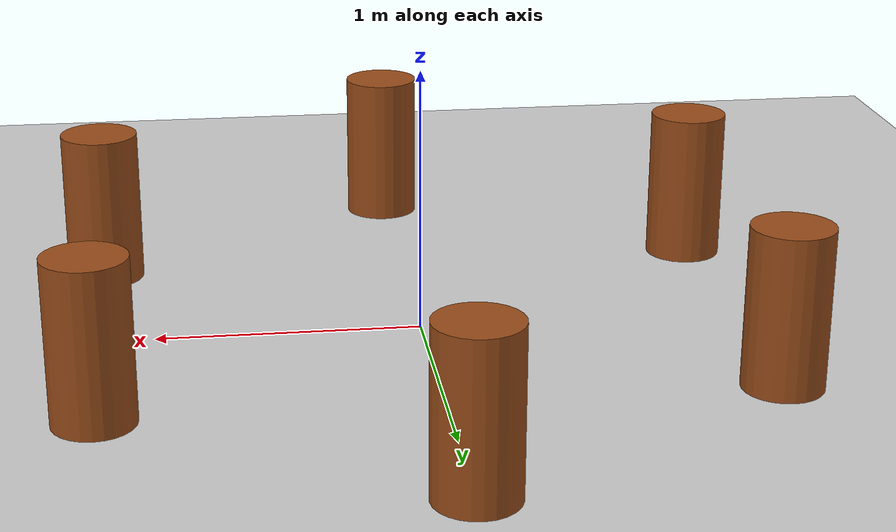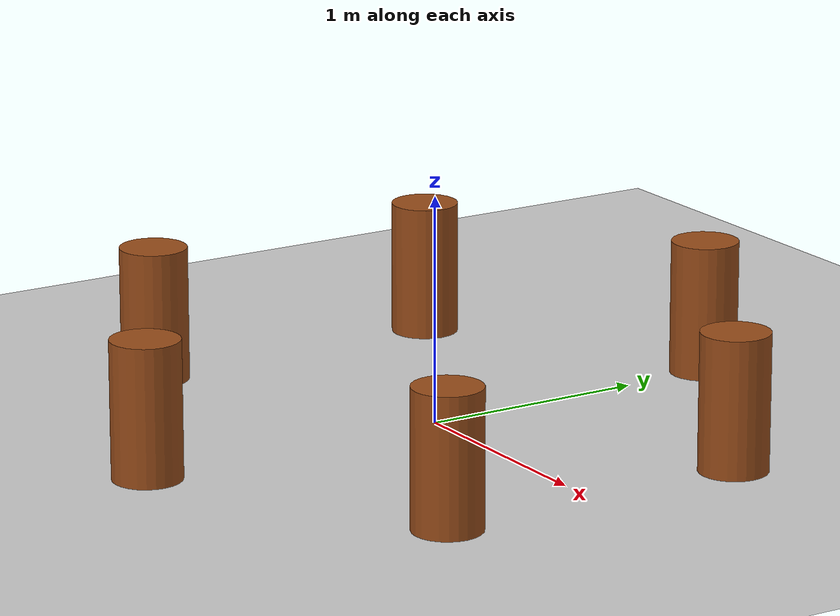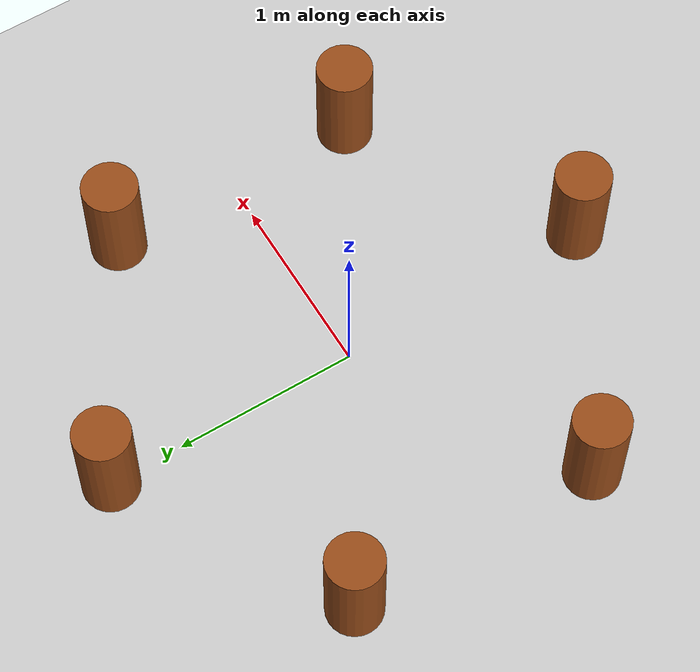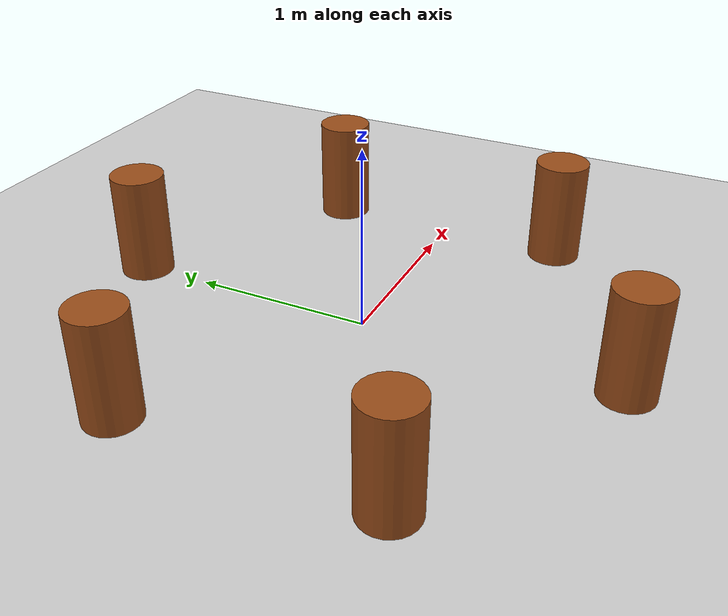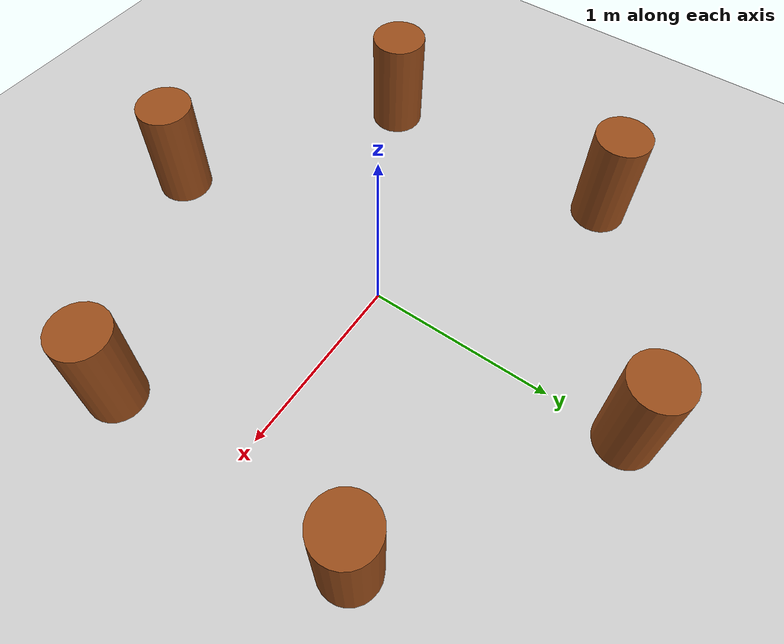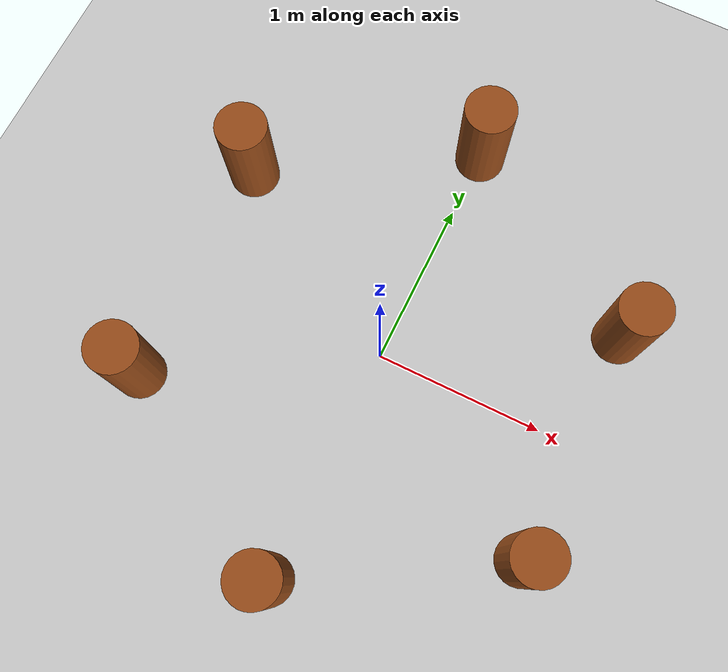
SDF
<sdf version="1.8">
 <world name="empty">
  <physics name="1ms" type="ignored">
   <max_step_size>0.001</max_step_size>
   <real_time_factor>1.0</real_time_factor>
  </physics>
  <plugin filename="libignition-gazebo-physics-system.so" name="ignition::gazebo::systems::Physics"/>
  <plugin filename="libignition-gazebo-user-commands-system.so" name="ignition::gazebo::systems::UserCommands"/>
  <plugin filename="libignition-gazebo-scene-broadcaster-system.so" name="ignition::gazebo::systems::SceneBroadcaster"/>
  <plugin filename="libignition-gazebo-sensors-system.so" name="ignition::gazebo::systems::Sensors">
   <render_engine>ogre2</render_engine>
  </plugin>
  <light type="directional" name="sun">
   <pose>0 0 10 0 0 0</pose>
   <diffuse>0.8 0.8 0.8 1</diffuse>
   <specular>0.2 0.2 0.2 1</specular>
   <direction>-0.5 0.1 -0.9</direction>
  </light>
  <model name="ground_plane">
   <static>true</static>
   <link name="link">
    <collision name="collision">
     <geometry><plane><normal>0 0 1</normal><size>100 100</size></plane></geometry>
    </collision>
    <visual name="visual">
     <geometry><plane><normal>0 0 1</normal><size>100 100</size></plane></geometry>
     <material><ambient>0.8 0.8 0.8 1</ambient><diffuse>0.8 0.8 0.8 1</diffuse></material>
    </visual>
   </link>
  </model>
  <model name="cylinder_obs_0">
   <static>true</static>
   <pose>0 1.4 0 0 0 0</pose>
   <link name="link">
    <pose>0 0 0.3 0 0 0</pose>
    <collision name="col">
     <geometry><cylinder><radius>0.15</radius><length>0.6</length></cylinder></geometry>
    </collision>
    <visual name="vis">
     <geometry><cylinder><radius>0.15</radius><length>0.6</length></cylinder></geometry>
     <material><ambient>0.6 0.3 0.1 1</ambient><diffuse>0.6 0.3 0.1 1</diffuse></material>
    </visual>
   </link>
  </model>
  <model name="cylinder_obs_1">
   <static>true</static>
   <pose>1.2 0.7 0 0 0 0</pose>
   <link name="link">
    <pose>0 0 0.3 0 0 0</pose>
    <collision name="col">
     <geometry><cylinder><radius>0.15</radius><length>0.6</length></cylinder></geometry>
    </collision>
    <visual name="vis">
     <geometry><cylinder><radius>0.15</radius><length>0.6</length></cylinder></geometry>
     <material><ambient>0.6 0.3 0.1 1</ambient><diffuse>0.6 0.3 0.1 1</diffuse></material>
    </visual>
   </link>
  </model>
  <model name="cylinder_obs_2">
   <static>true</static>
   <pose>1.2 -0.7 0 0 0 0</pose>
   <link name="link">
    <pose>0 0 0.3 0 0 0</pose>
    <collision name="col">
     <geometry><cylinder><radius>0.15</radius><length>0.6</length></cylinder></geometry>
    </collision>
    <visual name="vis">
     <geometry><cylinder><radius>0.15</radius><length>0.6</length></cylinder></geometry>
     <material><ambient>0.6 0.3 0.1 1</ambient><diffuse>0.6 0.3 0.1 1</diffuse></material>
    </visual>
   </link>
  </model>
  <model name="cylinder_obs_3">
   <static>true</static>
   <pose>0 -1.4 0 0 0 0</pose>
   <link name="link">
    <pose>0 0 0.3 0 0 0</pose>
    <collision name="col">
     <geometry><cylinder><radius>0.15</radius><length>0.6</length></cylinder></geometry>
    </collision>
    <visual name="vis">
     <geometry><cylinder><radius>0.15</radius><length>0.6</length></cylinder></geometry>
     <material><ambient>0.6 0.3 0.1 1</ambient><diffuse>0.6 0.3 0.1 1</diffuse></material>
    </visual>
   </link>
  </model>
  <model name="cylinder_obs_4">
   <static>true</static>
   <pose>-1.2 -0.7 0 0 0 0</pose>
   <link name="link">
    <pose>0 0 0.3 0 0 0</pose>
    <collision name="col">
     <geometry><cylinder><radius>0.15</radius><length>0.6</length></cylinder></geometry>
    </collision>
    <visual name="vis">
     <geometry><cylinder><radius>0.15</radius><length>0.6</length></cylinder></geometry>
     <material><ambient>0.6 0.3 0.1 1</ambient><diffuse>0.6 0.3 0.1 1</diffuse></material>
    </visual>
   </link>
  </model>
  <model name="cylinder_obs_5">
   <static>true</static>
   <pose>-1.2 0.7 0 0 0 0</pose>
   <link name="link">
    <pose>0 0 0.3 0 0 0</pose>
    <collision name="col">
     <geometry><cylinder><radius>0.15</radius><length>0.6</length></cylinder></geometry>
    </collision>
    <visual name="vis">
     <geometry><cylinder><radius>0.15</radius><length>0.6</length></cylinder></geometry>
     <material><ambient>0.6 0.3 0.1 1</ambient><diffuse>0.6 0.3 0.1 1</diffuse></material>
    </visual>
   </link>
  </model>
 </world>
</sdf>
